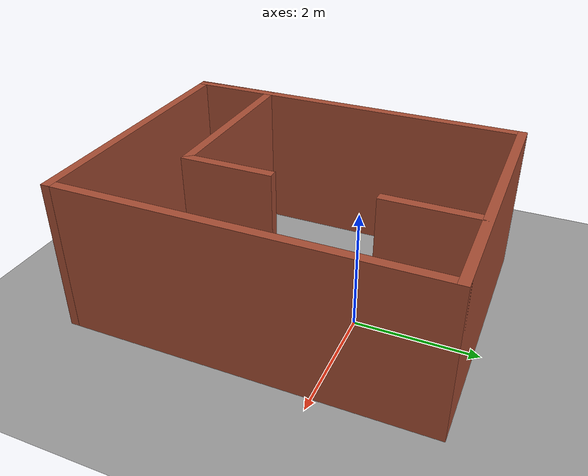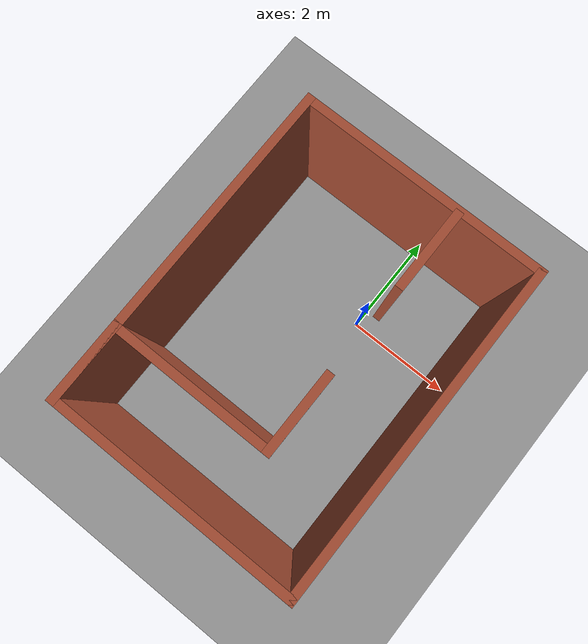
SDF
<sdf version="1.6">
 <world name="default">
  <light name="sun" type="directional">
   <pose>0 0 10 0 -0 0</pose>
   <diffuse>0.8 0.8 0.8 1</diffuse>
   <specular>0.2 0.2 0.2 1</specular>
   <attenuation>
    <range>1000</range>
    <constant>0.9</constant>
    <linear>0.01</linear>
    <quadratic>0.001</quadratic>
   </attenuation>
   <direction>0.5 0.1 -0.9</direction>
  </light>
  <scene><ambient>0.4 0.4 0.4 1</ambient><background>0.7 0.7 0.7 1</background><shadows>1</shadows></scene>
  <physics name="default_physics" default="0" type="ode">
   <max_step_size>0.01</max_step_size>
   <real_time_factor>1</real_time_factor>
   <real_time_update_rate>100</real_time_update_rate>
  </physics>
  <model name="ground_plane_0">
   <static>1</static>
   <link name="link">
    <collision name="collision">
     <geometry><plane><normal>0 0 1</normal><size>100 100</size></plane></geometry>
     <surface><friction><ode><mu>100</mu><mu2>50</mu2></ode></friction></surface>
    </collision>
    <visual name="visual">
     <cast_shadows>0</cast_shadows>
     <geometry><plane><normal>0 0 1</normal><size>100 100</size></plane></geometry>
     <material>
      <script><uri>file://media/materials/scripts/gazebo.material</uri><name>Gazebo/Grey</name></script>
     </material>
    </visual>
    <velocity_decay><linear>0</linear><angular>0</angular></velocity_decay>
   </link>
   <pose>0.497681 0 0 0 -0 0</pose>
  </model>
  <gravity>0 0 -9.8</gravity>
  <magnetic_field>6e-06 2.3e-05 -4.2e-05</magnetic_field>
  <atmosphere type="adiabatic"/>
  <audio><device>default</device></audio>
  <spherical_coordinates>
   <surface_model>EARTH_WGS84</surface_model>
   <latitude_deg>0</latitude_deg>
   <longitude_deg>0</longitude_deg>
   <elevation>0</elevation>
   <heading_deg>0</heading_deg>
  </spherical_coordinates>
  <model name="Proj1_Room_Model">
   <pose>-0.465524 -1.10475 0 0 -0 0</pose>
   <link name="Wall_10">
    <collision name="Wall_10_Collision">
     <geometry><box><size>1.5 0.15 2.5</size></box></geometry>
     <pose>0 0 1.25 0 -0 0</pose>
    </collision>
    <visual name="Wall_10_Visual">
     <pose>0 0 1.25 0 -0 0</pose>
     <geometry><box><size>1.5 0.15 2.5</size></box></geometry>
     <material>
      <script><uri>file://media/materials/scripts/gazebo.material</uri><name>Gazebo/Bricks</name></script>
      <ambient>1 1 1 1</ambient>
     </material>
     <meta><layer>0</layer></meta>
    </visual>
    <pose>0.675 -0.9 0 0 -0 1.5708</pose>
   </link>
   <link name="Wall_12">
    <collision name="Wall_12_Collision">
     <geometry><box><size>1.5 0.15 2.5</size></box></geometry>
     <pose>0 0 1.25 0 -0 0</pose>
    </collision>
    <visual name="Wall_12_Visual">
     <pose>0 0 1.25 0 -0 0</pose>
     <geometry><box><size>1.5 0.15 2.5</size></box></geometry>
     <material>
      <script><uri>file://media/materials/scripts/gazebo.material</uri><name>Gazebo/Bricks</name></script>
      <ambient>1 1 1 1</ambient>
     </material>
     <meta><layer>0</layer></meta>
    </visual>
    <pose>0.687631 2.18033 0 0 -0 -1.5708</pose>
   </link>
   <link name="Wall_4">
    <collision name="Wall_4_Collision">
     <geometry><box><size>6 0.15 2.5</size></box></geometry>
     <pose>0 0 1.25 0 -0 0</pose>
    </collision>
    <visual name="Wall_4_Visual">
     <pose>0 0 1.25 0 -0 0</pose>
     <geometry><box><size>6 0.15 2.5</size></box></geometry>
     <material>
      <script><uri>file://media/materials/scripts/gazebo.material</uri><name>Gazebo/Bricks</name></script>
      <ambient>1 1 1 1</ambient>
     </material>
     <meta><layer>0</layer></meta>
    </visual>
    <pose>-2.175 0 0 0 -0 1.5708</pose>
   </link>
   <link name="Wall_5">
    <collision name="Wall_5_Collision">
     <geometry><box><size>4.5 0.15 2.5</size></box></geometry>
     <pose>0 0 1.25 0 -0 0</pose>
    </collision>
    <visual name="Wall_5_Visual">
     <pose>0 0 1.25 0 -0 0</pose>
     <geometry><box><size>4.5 0.15 2.5</size></box></geometry>
     <material>
      <script><uri>file://media/materials/scripts/gazebo.material</uri><name>Gazebo/Bricks</name></script>
      <ambient>1 1 1 1</ambient>
     </material>
     <meta><layer>0</layer></meta>
    </visual>
    <pose>-0 2.925 0 0 -0 0</pose>
   </link>
   <link name="Wall_6">
    <collision name="Wall_6_Collision">
     <geometry><box><size>6 0.15 2.5</size></box></geometry>
     <pose>0 0 1.25 0 -0 0</pose>
    </collision>
    <visual name="Wall_6_Visual">
     <pose>0 0 1.25 0 -0 0</pose>
     <geometry><box><size>6 0.15 2.5</size></box></geometry>
     <material>
      <script><uri>file://media/materials/scripts/gazebo.material</uri><name>Gazebo/Bricks</name></script>
      <ambient>1 1 1 1</ambient>
     </material>
     <meta><layer>0</layer></meta>
    </visual>
    <pose>2.175 0 0 0 -0 -1.5708</pose>
   </link>
   <link name="Wall_7">
    <collision name="Wall_7_Collision">
     <geometry><box><size>4.5 0.15 2.5</size></box></geometry>
     <pose>0 0 1.25 0 -0 0</pose>
    </collision>
    <visual name="Wall_7_Visual">
     <pose>0 0 1.25 0 -0 0</pose>
     <geometry><box><size>4.5 0.15 2.5</size></box></geometry>
     <material>
      <script><uri>file://media/materials/scripts/gazebo.material</uri><name>Gazebo/Bricks</name></script>
      <ambient>1 1 1 1</ambient>
     </material>
     <meta><layer>0</layer></meta>
    </visual>
    <pose>-0 -2.925 0 0 -0 3.14159</pose>
   </link>
   <link name="Wall_8">
    <collision name="Wall_8_Collision">
     <geometry><box><size>1.5 0.15 2.5</size></box></geometry>
     <pose>0 0 1.25 0 -0 0</pose>
    </collision>
    <visual name="Wall_8_Visual">
     <pose>0 0 1.25 0 -0 0</pose>
     <geometry><box><size>1.5 0.15 2.5</size></box></geometry>
     <material>
      <script><uri>file://media/materials/scripts/gazebo.material</uri><name>Gazebo/Bricks</name></script>
      <ambient>1 1 1 1</ambient>
     </material>
     <meta><layer>0</layer></meta>
    </visual>
    <pose>-2.175 -2.25 0 0 -0 1.5708</pose>
   </link>
   <link name="Wall_9">
    <collision name="Wall_9_Collision">
     <geometry><box><size>3 0.15 2.5</size></box></geometry>
     <pose>0 0 1.25 0 -0 0</pose>
    </collision>
    <visual name="Wall_9_Visual">
     <pose>0 0 1.25 0 -0 0</pose>
     <geometry><box><size>3 0.15 2.5</size></box></geometry>
     <material>
      <script><uri>file://media/materials/scripts/gazebo.material</uri><name>Gazebo/Bricks</name></script>
      <ambient>1 1 1 1</ambient>
     </material>
     <meta><layer>0</layer></meta>
    </visual>
    <pose>-0.75 -1.575 0 0 -0 0</pose>
   </link>
   <static>1</static>
  </model>
 </world>
</sdf>
